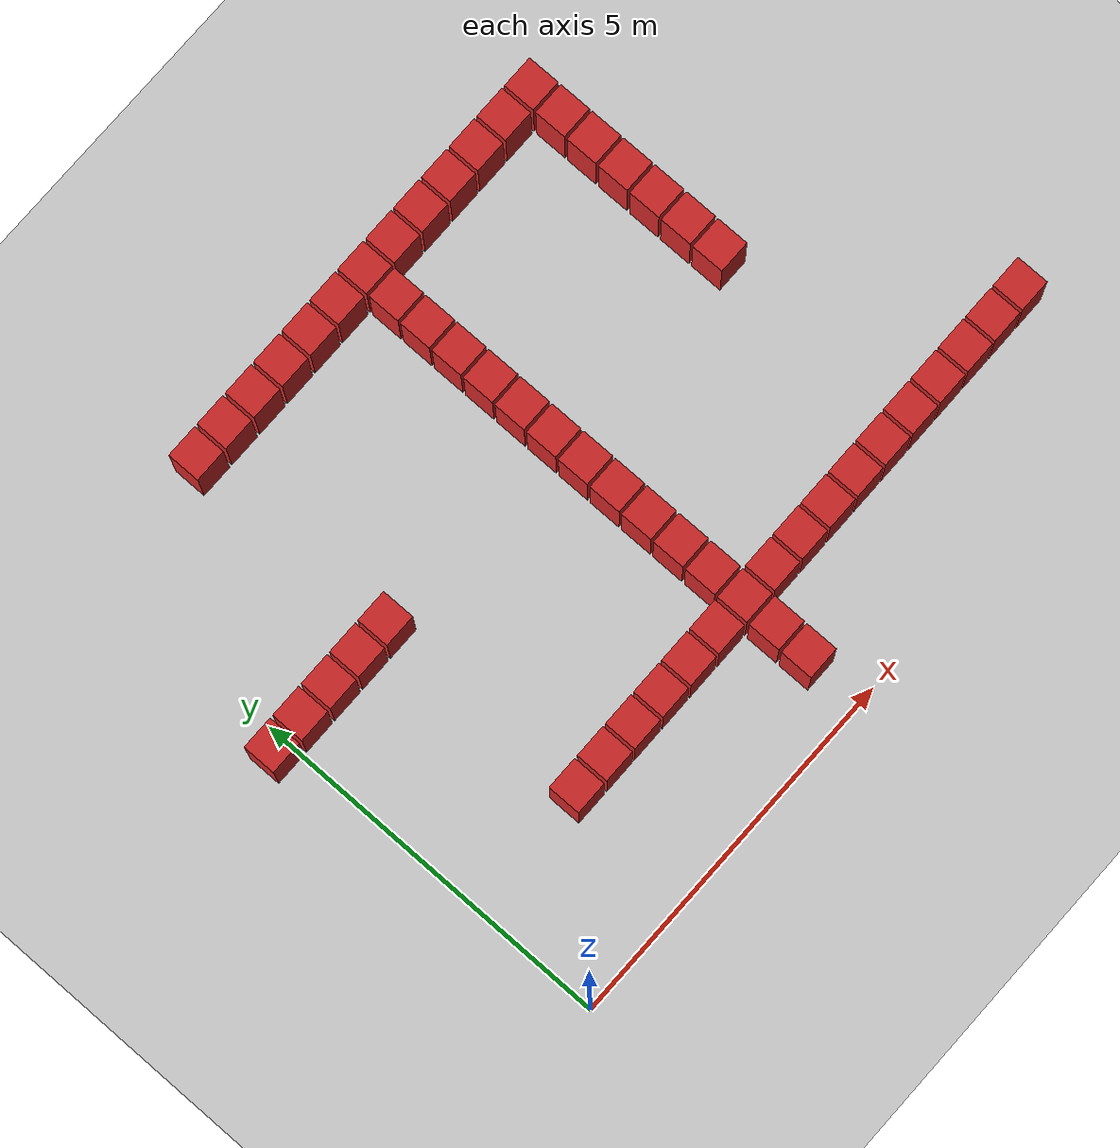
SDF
<sdf version="1.6">
 <world name="default">
  <model name="ground_plane">
   <static>1</static>
   <link name="link">
    <collision name="collision">
     <geometry><plane><normal>0 0 1</normal><size>100 100</size></plane></geometry>
     <surface><friction><ode><mu>100</mu><mu2>50</mu2></ode></friction></surface>
    </collision>
    <visual name="visual">
     <cast_shadows>0</cast_shadows>
     <geometry><plane><normal>0 0 1</normal><size>100 100</size></plane></geometry>
     <material>
      <script><uri>file://media/materials/scripts/gazebo.material</uri><name>Gazebo/Grey</name></script>
     </material>
    </visual>
   </link>
  </model>
  <model name="box_obstacle110">
   <static>0</static>
   <link name="box_obstacle110">
    <pose>0 0 0.1 0 -0 0</pose>
    <inertial>
     <mass>100</mass>
     <inertia>
      <ixx>0.166667</ixx>
      <ixy>0</ixy>
      <ixz>0</ixz>
      <iyy>0.166667</iyy>
      <iyz>0</iyz>
      <izz>0.166667</izz>
     </inertia>
    </inertial>
    <collision name="collision"><geometry><box><size>0.45 0.45 1</size></box></geometry></collision>
    <visual name="visual">
     <geometry><box><size>0.45 0.45 1</size></box></geometry>
     <material>
      <script><name>Gazebo/Red</name><uri>file://media/materials/scripts/gazebo.material</uri></script>
     </material>
    </visual>
   </link>
   <pose>-0.200508 4.69876 0.4 0 5e-06 0.002247</pose>
  </model>
  <model name="box_obstacle112">
   <static>0</static>
   <link name="box_obstacle112">
    <pose>0 0 0.1 0 -0 0</pose>
    <inertial>
     <mass>100</mass>
     <inertia>
      <ixx>0.166667</ixx>
      <ixy>0</ixy>
      <ixz>0</ixz>
      <iyy>0.166667</iyy>
      <iyz>0</iyz>
      <izz>0.166667</izz>
     </inertia>
    </inertial>
    <collision name="collision"><geometry><box><size>0.45 0.45 1</size></box></geometry></collision>
    <visual name="visual">
     <geometry><box><size>0.45 0.45 1</size></box></geometry>
     <material>
      <script><name>Gazebo/Red</name><uri>file://media/materials/scripts/gazebo.material</uri></script>
     </material>
    </visual>
   </link>
   <pose>0.289492 4.69876 0.4 0 5e-06 0.002247</pose>
  </model>
  <model name="box_obstacle114">
   <static>0</static>
   <link name="box_obstacle114">
    <pose>0 0 0.1 0 -0 0</pose>
    <inertial>
     <mass>100</mass>
     <inertia>
      <ixx>0.166667</ixx>
      <ixy>0</ixy>
      <ixz>0</ixz>
      <iyy>0.166667</iyy>
      <iyz>0</iyz>
      <izz>0.166667</izz>
     </inertia>
    </inertial>
    <collision name="collision"><geometry><box><size>0.45 0.45 1</size></box></geometry></collision>
    <visual name="visual">
     <geometry><box><size>0.45 0.45 1</size></box></geometry>
     <material>
      <script><name>Gazebo/Red</name><uri>file://media/materials/scripts/gazebo.material</uri></script>
     </material>
    </visual>
   </link>
   <pose>0.779492 4.69876 0.4 0 5e-06 0.002247</pose>
  </model>
  <model name="box_obstacle116">
   <static>0</static>
   <link name="box_obstacle116">
    <pose>0 0 0.1 0 -0 0</pose>
    <inertial>
     <mass>100</mass>
     <inertia>
      <ixx>0.166667</ixx>
      <ixy>0</ixy>
      <ixz>0</ixz>
      <iyy>0.166667</iyy>
      <iyz>0</iyz>
      <izz>0.166667</izz>
     </inertia>
    </inertial>
    <collision name="collision"><geometry><box><size>0.45 0.45 1</size></box></geometry></collision>
    <visual name="visual">
     <geometry><box><size>0.45 0.45 1</size></box></geometry>
     <material>
      <script><name>Gazebo/Red</name><uri>file://media/materials/scripts/gazebo.material</uri></script>
     </material>
    </visual>
   </link>
   <pose>1.26949 4.69876 0.4 0 5e-06 0.002247</pose>
  </model>
  <model name="box_obstacle130">
   <static>0</static>
   <link name="box_obstacle130">
    <pose>0 0 0.1 0 -0 0</pose>
    <inertial>
     <mass>100</mass>
     <inertia>
      <ixx>0.166667</ixx>
      <ixy>0</ixy>
      <ixz>0</ixz>
      <iyy>0.166667</iyy>
      <iyz>0</iyz>
      <izz>0.166667</izz>
     </inertia>
    </inertial>
    <collision name="collision"><geometry><box><size>0.45 0.45 1</size></box></geometry></collision>
    <visual name="visual">
     <geometry><box><size>0.45 0.45 1</size></box></geometry>
     <material>
      <script><name>Gazebo/Red</name><uri>file://media/materials/scripts/gazebo.material</uri></script>
     </material>
    </visual>
   </link>
   <pose>1.75949 1.75876 0.4 0 5e-06 0.002247</pose>
  </model>
  <model name="box_obstacle131">
   <static>0</static>
   <link name="box_obstacle131">
    <pose>0 0 0.1 0 -0 0</pose>
    <inertial>
     <mass>100</mass>
     <inertia>
      <ixx>0.166667</ixx>
      <ixy>0</ixy>
      <ixz>0</ixz>
      <iyy>0.166667</iyy>
      <iyz>0</iyz>
      <izz>0.166667</izz>
     </inertia>
    </inertial>
    <collision name="collision"><geometry><box><size>0.45 0.45 1</size></box></geometry></collision>
    <visual name="visual">
     <geometry><box><size>0.45 0.45 1</size></box></geometry>
     <material>
      <script><name>Gazebo/Red</name><uri>file://media/materials/scripts/gazebo.material</uri></script>
     </material>
    </visual>
   </link>
   <pose>1.75949 4.69876 0.4 0 5e-06 0.002247</pose>
  </model>
  <model name="box_obstacle132">
   <static>0</static>
   <link name="box_obstacle132">
    <pose>0 0 0.1 0 -0 0</pose>
    <inertial>
     <mass>100</mass>
     <inertia>
      <ixx>0.166667</ixx>
      <ixy>0</ixy>
      <ixz>0</ixz>
      <iyy>0.166667</iyy>
      <iyz>0</iyz>
      <izz>0.166667</izz>
     </inertia>
    </inertial>
    <collision name="collision"><geometry><box><size>0.45 0.45 1</size></box></geometry></collision>
    <visual name="visual">
     <geometry><box><size>0.45 0.45 1</size></box></geometry>
     <material>
      <script><name>Gazebo/Red</name><uri>file://media/materials/scripts/gazebo.material</uri></script>
     </material>
    </visual>
   </link>
   <pose>1.75949 7.63876 0.4 0 5e-06 0.002247</pose>
  </model>
  <model name="box_obstacle134">
   <static>0</static>
   <link name="box_obstacle134">
    <pose>0 0 0.1 0 -0 0</pose>
    <inertial>
     <mass>100</mass>
     <inertia>
      <ixx>0.166667</ixx>
      <ixy>0</ixy>
      <ixz>0</ixz>
      <iyy>0.166667</iyy>
      <iyz>0</iyz>
      <izz>0.166667</izz>
     </inertia>
    </inertial>
    <collision name="collision"><geometry><box><size>0.45 0.45 1</size></box></geometry></collision>
    <visual name="visual">
     <geometry><box><size>0.45 0.45 1</size></box></geometry>
     <material>
      <script><name>Gazebo/Red</name><uri>file://media/materials/scripts/gazebo.material</uri></script>
     </material>
    </visual>
   </link>
   <pose>2.24949 1.75876 0.4 0 5e-06 0.002247</pose>
  </model>
  <model name="box_obstacle135">
   <static>0</static>
   <link name="box_obstacle135">
    <pose>0 0 0.1 0 -0 0</pose>
    <inertial>
     <mass>100</mass>
     <inertia>
      <ixx>0.166667</ixx>
      <ixy>0</ixy>
      <ixz>0</ixz>
      <iyy>0.166667</iyy>
      <iyz>0</iyz>
      <izz>0.166667</izz>
     </inertia>
    </inertial>
    <collision name="collision"><geometry><box><size>0.45 0.45 1</size></box></geometry></collision>
    <visual name="visual">
     <geometry><box><size>0.45 0.45 1</size></box></geometry>
     <material>
      <script><name>Gazebo/Red</name><uri>file://media/materials/scripts/gazebo.material</uri></script>
     </material>
    </visual>
   </link>
   <pose>2.24949 7.63876 0.4 0 5e-06 0.002247</pose>
  </model>
  <model name="box_obstacle137">
   <static>0</static>
   <link name="box_obstacle137">
    <pose>0 0 0.1 0 -0 0</pose>
    <inertial>
     <mass>100</mass>
     <inertia>
      <ixx>0.166667</ixx>
      <ixy>0</ixy>
      <ixz>0</ixz>
      <iyy>0.166667</iyy>
      <iyz>0</iyz>
      <izz>0.166667</izz>
     </inertia>
    </inertial>
    <collision name="collision"><geometry><box><size>0.45 0.45 1</size></box></geometry></collision>
    <visual name="visual">
     <geometry><box><size>0.45 0.45 1</size></box></geometry>
     <material>
      <script><name>Gazebo/Red</name><uri>file://media/materials/scripts/gazebo.material</uri></script>
     </material>
    </visual>
   </link>
   <pose>2.73949 1.75876 0.4 0 5e-06 0.002247</pose>
  </model>
  <model name="box_obstacle138">
   <static>0</static>
   <link name="box_obstacle138">
    <pose>0 0 0.1 0 -0 0</pose>
    <inertial>
     <mass>100</mass>
     <inertia>
      <ixx>0.166667</ixx>
      <ixy>0</ixy>
      <ixz>0</ixz>
      <iyy>0.166667</iyy>
      <iyz>0</iyz>
      <izz>0.166667</izz>
     </inertia>
    </inertial>
    <collision name="collision"><geometry><box><size>0.45 0.45 1</size></box></geometry></collision>
    <visual name="visual">
     <geometry><box><size>0.45 0.45 1</size></box></geometry>
     <material>
      <script><name>Gazebo/Red</name><uri>file://media/materials/scripts/gazebo.material</uri></script>
     </material>
    </visual>
   </link>
   <pose>2.73949 7.63876 0.4 0 5e-06 0.002247</pose>
  </model>
  <model name="box_obstacle140">
   <static>0</static>
   <link name="box_obstacle140">
    <pose>0 0 0.1 0 -0 0</pose>
    <inertial>
     <mass>100</mass>
     <inertia>
      <ixx>0.166667</ixx>
      <ixy>0</ixy>
      <ixz>0</ixz>
      <iyy>0.166667</iyy>
      <iyz>0</iyz>
      <izz>0.166667</izz>
     </inertia>
    </inertial>
    <collision name="collision"><geometry><box><size>0.45 0.45 1</size></box></geometry></collision>
    <visual name="visual">
     <geometry><box><size>0.45 0.45 1</size></box></geometry>
     <material>
      <script><name>Gazebo/Red</name><uri>file://media/materials/scripts/gazebo.material</uri></script>
     </material>
    </visual>
   </link>
   <pose>3.22949 1.75876 0.4 0 5e-06 0.002247</pose>
  </model>
  <model name="box_obstacle141">
   <static>0</static>
   <link name="box_obstacle141">
    <pose>0 0 0.1 0 -0 0</pose>
    <inertial>
     <mass>100</mass>
     <inertia>
      <ixx>0.166667</ixx>
      <ixy>0</ixy>
      <ixz>0</ixz>
      <iyy>0.166667</iyy>
      <iyz>0</iyz>
      <izz>0.166667</izz>
     </inertia>
    </inertial>
    <collision name="collision"><geometry><box><size>0.45 0.45 1</size></box></geometry></collision>
    <visual name="visual">
     <geometry><box><size>0.45 0.45 1</size></box></geometry>
     <material>
      <script><name>Gazebo/Red</name><uri>file://media/materials/scripts/gazebo.material</uri></script>
     </material>
    </visual>
   </link>
   <pose>3.22949 7.63876 0.4 0 5e-06 0.002247</pose>
  </model>
  <model name="box_obstacle143">
   <static>0</static>
   <link name="box_obstacle143">
    <pose>0 0 0.1 0 -0 0</pose>
    <inertial>
     <mass>100</mass>
     <inertia>
      <ixx>0.166667</ixx>
      <ixy>0</ixy>
      <ixz>0</ixz>
      <iyy>0.166667</iyy>
      <iyz>0</iyz>
      <izz>0.166667</izz>
     </inertia>
    </inertial>
    <collision name="collision"><geometry><box><size>0.45 0.45 1</size></box></geometry></collision>
    <visual name="visual">
     <geometry><box><size>0.45 0.45 1</size></box></geometry>
     <material>
      <script><name>Gazebo/Red</name><uri>file://media/materials/scripts/gazebo.material</uri></script>
     </material>
    </visual>
   </link>
   <pose>3.71949 1.75876 0.4 0 5e-06 0.002247</pose>
  </model>
  <model name="box_obstacle144">
   <static>0</static>
   <link name="box_obstacle144">
    <pose>0 0 0.1 0 -0 0</pose>
    <inertial>
     <mass>100</mass>
     <inertia>
      <ixx>0.166667</ixx>
      <ixy>0</ixy>
      <ixz>0</ixz>
      <iyy>0.166667</iyy>
      <iyz>0</iyz>
      <izz>0.166667</izz>
     </inertia>
    </inertial>
    <collision name="collision"><geometry><box><size>0.45 0.45 1</size></box></geometry></collision>
    <visual name="visual">
     <geometry><box><size>0.45 0.45 1</size></box></geometry>
     <material>
      <script><name>Gazebo/Red</name><uri>file://media/materials/scripts/gazebo.material</uri></script>
     </material>
    </visual>
   </link>
   <pose>3.71949 7.63876 0.4 0 5e-06 0.002247</pose>
  </model>
  <model name="box_obstacle146">
   <static>0</static>
   <link name="box_obstacle146">
    <pose>0 0 0.1 0 -0 0</pose>
    <inertial>
     <mass>100</mass>
     <inertia>
      <ixx>0.166667</ixx>
      <ixy>0</ixy>
      <ixz>0</ixz>
      <iyy>0.166667</iyy>
      <iyz>0</iyz>
      <izz>0.166667</izz>
     </inertia>
    </inertial>
    <collision name="collision"><geometry><box><size>0.45 0.45 1</size></box></geometry></collision>
    <visual name="visual">
     <geometry><box><size>0.45 0.45 1</size></box></geometry>
     <material>
      <script><name>Gazebo/Red</name><uri>file://media/materials/scripts/gazebo.material</uri></script>
     </material>
    </visual>
   </link>
   <pose>4.20949 1.75876 0.4 0 5e-06 0.002247</pose>
  </model>
  <model name="box_obstacle147">
   <static>0</static>
   <link name="box_obstacle147">
    <pose>0 0 0.1 0 -0 0</pose>
    <inertial>
     <mass>100</mass>
     <inertia>
      <ixx>0.166667</ixx>
      <ixy>0</ixy>
      <ixz>0</ixz>
      <iyy>0.166667</iyy>
      <iyz>0</iyz>
      <izz>0.166667</izz>
     </inertia>
    </inertial>
    <collision name="collision"><geometry><box><size>0.45 0.45 1</size></box></geometry></collision>
    <visual name="visual">
     <geometry><box><size>0.45 0.45 1</size></box></geometry>
     <material>
      <script><name>Gazebo/Red</name><uri>file://media/materials/scripts/gazebo.material</uri></script>
     </material>
    </visual>
   </link>
   <pose>4.20949 7.63876 0.4 0 5e-06 0.002247</pose>
  </model>
  <model name="box_obstacle159">
   <static>0</static>
   <link name="box_obstacle159">
    <pose>0 0 0.1 0 -0 0</pose>
    <inertial>
     <mass>100</mass>
     <inertia>
      <ixx>0.166667</ixx>
      <ixy>0</ixy>
      <ixz>0</ixz>
      <iyy>0.166667</iyy>
      <iyz>0</iyz>
      <izz>0.166667</izz>
     </inertia>
    </inertial>
    <collision name="collision"><geometry><box><size>0.45 0.45 1</size></box></geometry></collision>
    <visual name="visual">
     <geometry><box><size>0.45 0.45 1</size></box></geometry>
     <material>
      <script><name>Gazebo/Red</name><uri>file://media/materials/scripts/gazebo.material</uri></script>
     </material>
    </visual>
   </link>
   <pose>4.69949 0.778758 0.4 0 5e-06 0.002247</pose>
  </model>
  <model name="box_obstacle160">
   <static>0</static>
   <link name="box_obstacle160">
    <pose>0 0 0.1 0 -0 0</pose>
    <inertial>
     <mass>100</mass>
     <inertia>
      <ixx>0.166667</ixx>
      <ixy>0</ixy>
      <ixz>0</ixz>
      <iyy>0.166667</iyy>
      <iyz>0</iyz>
      <izz>0.166667</izz>
     </inertia>
    </inertial>
    <collision name="collision"><geometry><box><size>0.45 0.45 1</size></box></geometry></collision>
    <visual name="visual">
     <geometry><box><size>0.45 0.45 1</size></box></geometry>
     <material>
      <script><name>Gazebo/Red</name><uri>file://media/materials/scripts/gazebo.material</uri></script>
     </material>
    </visual>
   </link>
   <pose>4.69949 1.26876 0.4 0 5e-06 0.002247</pose>
  </model>
  <model name="box_obstacle161">
   <static>0</static>
   <link name="box_obstacle161">
    <pose>0 0 0.1 0 -0 0</pose>
    <inertial>
     <mass>100</mass>
     <inertia>
      <ixx>0.166667</ixx>
      <ixy>0</ixy>
      <ixz>0</ixz>
      <iyy>0.166667</iyy>
      <iyz>0</iyz>
      <izz>0.166667</izz>
     </inertia>
    </inertial>
    <collision name="collision"><geometry><box><size>0.45 0.45 1</size></box></geometry></collision>
    <visual name="visual">
     <geometry><box><size>0.45 0.45 1</size></box></geometry>
     <material>
      <script><name>Gazebo/Red</name><uri>file://media/materials/scripts/gazebo.material</uri></script>
     </material>
    </visual>
   </link>
   <pose>4.69949 1.75876 0.4 0 5e-06 0.002247</pose>
  </model>
  <model name="box_obstacle162">
   <static>0</static>
   <link name="box_obstacle162">
    <pose>0 0 0.1 0 -0 0</pose>
    <inertial>
     <mass>100</mass>
     <inertia>
      <ixx>0.166667</ixx>
      <ixy>0</ixy>
      <ixz>0</ixz>
      <iyy>0.166667</iyy>
      <iyz>0</iyz>
      <izz>0.166667</izz>
     </inertia>
    </inertial>
    <collision name="collision"><geometry><box><size>0.45 0.45 1</size></box></geometry></collision>
    <visual name="visual">
     <geometry><box><size>0.45 0.45 1</size></box></geometry>
     <material>
      <script><name>Gazebo/Red</name><uri>file://media/materials/scripts/gazebo.material</uri></script>
     </material>
    </visual>
   </link>
   <pose>4.69949 2.24876 0.4 0 5e-06 0.002247</pose>
  </model>
  <model name="box_obstacle163">
   <static>0</static>
   <link name="box_obstacle163">
    <pose>0 0 0.1 0 -0 0</pose>
    <inertial>
     <mass>100</mass>
     <inertia>
      <ixx>0.166667</ixx>
      <ixy>0</ixy>
      <ixz>0</ixz>
      <iyy>0.166667</iyy>
      <iyz>0</iyz>
      <izz>0.166667</izz>
     </inertia>
    </inertial>
    <collision name="collision"><geometry><box><size>0.45 0.45 1</size></box></geometry></collision>
    <visual name="visual">
     <geometry><box><size>0.45 0.45 1</size></box></geometry>
     <material>
      <script><name>Gazebo/Red</name><uri>file://media/materials/scripts/gazebo.material</uri></script>
     </material>
    </visual>
   </link>
   <pose>4.69949 2.73876 0.4 0 5e-06 0.002247</pose>
  </model>
  <model name="box_obstacle164">
   <static>0</static>
   <link name="box_obstacle164">
    <pose>0 0 0.1 0 -0 0</pose>
    <inertial>
     <mass>100</mass>
     <inertia>
      <ixx>0.166667</ixx>
      <ixy>0</ixy>
      <ixz>0</ixz>
      <iyy>0.166667</iyy>
      <iyz>0</iyz>
      <izz>0.166667</izz>
     </inertia>
    </inertial>
    <collision name="collision"><geometry><box><size>0.45 0.45 1</size></box></geometry></collision>
    <visual name="visual">
     <geometry><box><size>0.45 0.45 1</size></box></geometry>
     <material>
      <script><name>Gazebo/Red</name><uri>file://media/materials/scripts/gazebo.material</uri></script>
     </material>
    </visual>
   </link>
   <pose>4.69949 3.22876 0.4 0 5e-06 0.002247</pose>
  </model>
  <model name="box_obstacle165">
   <static>0</static>
   <link name="box_obstacle165">
    <pose>0 0 0.1 0 -0 0</pose>
    <inertial>
     <mass>100</mass>
     <inertia>
      <ixx>0.166667</ixx>
      <ixy>0</ixy>
      <ixz>0</ixz>
      <iyy>0.166667</iyy>
      <iyz>0</iyz>
      <izz>0.166667</izz>
     </inertia>
    </inertial>
    <collision name="collision"><geometry><box><size>0.45 0.45 1</size></box></geometry></collision>
    <visual name="visual">
     <geometry><box><size>0.45 0.45 1</size></box></geometry>
     <material>
      <script><name>Gazebo/Red</name><uri>file://media/materials/scripts/gazebo.material</uri></script>
     </material>
    </visual>
   </link>
   <pose>4.69949 3.71876 0.4 0 5e-06 0.002247</pose>
  </model>
  <model name="box_obstacle166">
   <static>0</static>
   <link name="box_obstacle166">
    <pose>0 0 0.1 0 -0 0</pose>
    <inertial>
     <mass>100</mass>
     <inertia>
      <ixx>0.166667</ixx>
      <ixy>0</ixy>
      <ixz>0</ixz>
      <iyy>0.166667</iyy>
      <iyz>0</iyz>
      <izz>0.166667</izz>
     </inertia>
    </inertial>
    <collision name="collision"><geometry><box><size>0.45 0.45 1</size></box></geometry></collision>
    <visual name="visual">
     <geometry><box><size>0.45 0.45 1</size></box></geometry>
     <material>
      <script><name>Gazebo/Red</name><uri>file://media/materials/scripts/gazebo.material</uri></script>
     </material>
    </visual>
   </link>
   <pose>4.69949 4.20876 0.4 0 5e-06 0.002247</pose>
  </model>
  <model name="box_obstacle167">
   <static>0</static>
   <link name="box_obstacle167">
    <pose>0 0 0.1 0 -0 0</pose>
    <inertial>
     <mass>100</mass>
     <inertia>
      <ixx>0.166667</ixx>
      <ixy>0</ixy>
      <ixz>0</ixz>
      <iyy>0.166667</iyy>
      <iyz>0</iyz>
      <izz>0.166667</izz>
     </inertia>
    </inertial>
    <collision name="collision"><geometry><box><size>0.45 0.45 1</size></box></geometry></collision>
    <visual name="visual">
     <geometry><box><size>0.45 0.45 1</size></box></geometry>
     <material>
      <script><name>Gazebo/Red</name><uri>file://media/materials/scripts/gazebo.material</uri></script>
     </material>
    </visual>
   </link>
   <pose>4.69949 4.69876 0.4 0 5e-06 0.002247</pose>
  </model>
  <model name="box_obstacle168">
   <static>0</static>
   <link name="box_obstacle168">
    <pose>0 0 0.1 0 -0 0</pose>
    <inertial>
     <mass>100</mass>
     <inertia>
      <ixx>0.166667</ixx>
      <ixy>0</ixy>
      <ixz>0</ixz>
      <iyy>0.166667</iyy>
      <iyz>0</iyz>
      <izz>0.166667</izz>
     </inertia>
    </inertial>
    <collision name="collision"><geometry><box><size>0.45 0.45 1</size></box></geometry></collision>
    <visual name="visual">
     <geometry><box><size>0.45 0.45 1</size></box></geometry>
     <material>
      <script><name>Gazebo/Red</name><uri>file://media/materials/scripts/gazebo.material</uri></script>
     </material>
    </visual>
   </link>
   <pose>4.69949 5.18876 0.4 0 5e-06 0.002247</pose>
  </model>
  <model name="box_obstacle169">
   <static>0</static>
   <link name="box_obstacle169">
    <pose>0 0 0.1 0 -0 0</pose>
    <inertial>
     <mass>100</mass>
     <inertia>
      <ixx>0.166667</ixx>
      <ixy>0</ixy>
      <ixz>0</ixz>
      <iyy>0.166667</iyy>
      <iyz>0</iyz>
      <izz>0.166667</izz>
     </inertia>
    </inertial>
    <collision name="collision"><geometry><box><size>0.45 0.45 1</size></box></geometry></collision>
    <visual name="visual">
     <geometry><box><size>0.45 0.45 1</size></box></geometry>
     <material>
      <script><name>Gazebo/Red</name><uri>file://media/materials/scripts/gazebo.material</uri></script>
     </material>
    </visual>
   </link>
   <pose>4.69949 5.67876 0.4 0 5e-06 0.002247</pose>
  </model>
  <model name="box_obstacle170">
   <static>0</static>
   <link name="box_obstacle170">
    <pose>0 0 0.1 0 -0 0</pose>
    <inertial>
     <mass>100</mass>
     <inertia>
      <ixx>0.166667</ixx>
      <ixy>0</ixy>
      <ixz>0</ixz>
      <iyy>0.166667</iyy>
      <iyz>0</iyz>
      <izz>0.166667</izz>
     </inertia>
    </inertial>
    <collision name="collision"><geometry><box><size>0.45 0.45 1</size></box></geometry></collision>
    <visual name="visual">
     <geometry><box><size>0.45 0.45 1</size></box></geometry>
     <material>
      <script><name>Gazebo/Red</name><uri>file://media/materials/scripts/gazebo.material</uri></script>
     </material>
    </visual>
   </link>
   <pose>4.69949 6.16876 0.4 0 5e-06 0.002247</pose>
  </model>
  <model name="box_obstacle171">
   <static>0</static>
   <link name="box_obstacle171">
    <pose>0 0 0.1 0 -0 0</pose>
    <inertial>
     <mass>100</mass>
     <inertia>
      <ixx>0.166667</ixx>
      <ixy>0</ixy>
      <ixz>0</ixz>
      <iyy>0.166667</iyy>
      <iyz>0</iyz>
      <izz>0.166667</izz>
     </inertia>
    </inertial>
    <collision name="collision"><geometry><box><size>0.45 0.45 1</size></box></geometry></collision>
    <visual name="visual">
     <geometry><box><size>0.45 0.45 1</size></box></geometry>
     <material>
      <script><name>Gazebo/Red</name><uri>file://media/materials/scripts/gazebo.material</uri></script>
     </material>
    </visual>
   </link>
   <pose>4.69949 6.65876 0.4 0 5e-06 0.002247</pose>
  </model>
  <model name="box_obstacle172">
   <static>0</static>
   <link name="box_obstacle172">
    <pose>0 0 0.1 0 -0 0</pose>
    <inertial>
     <mass>100</mass>
     <inertia>
      <ixx>0.166667</ixx>
      <ixy>0</ixy>
      <ixz>0</ixz>
      <iyy>0.166667</iyy>
      <iyz>0</iyz>
      <izz>0.166667</izz>
     </inertia>
    </inertial>
    <collision name="collision"><geometry><box><size>0.45 0.45 1</size></box></geometry></collision>
    <visual name="visual">
     <geometry><box><size>0.45 0.45 1</size></box></geometry>
     <material>
      <script><name>Gazebo/Red</name><uri>file://media/materials/scripts/gazebo.material</uri></script>
     </material>
    </visual>
   </link>
   <pose>4.69949 7.14876 0.4 0 5e-06 0.002247</pose>
  </model>
  <model name="box_obstacle173">
   <static>0</static>
   <link name="box_obstacle173">
    <pose>0 0 0.1 0 -0 0</pose>
    <inertial>
     <mass>100</mass>
     <inertia>
      <ixx>0.166667</ixx>
      <ixy>0</ixy>
      <ixz>0</ixz>
      <iyy>0.166667</iyy>
      <iyz>0</iyz>
      <izz>0.166667</izz>
     </inertia>
    </inertial>
    <collision name="collision"><geometry><box><size>0.45 0.45 1</size></box></geometry></collision>
    <visual name="visual">
     <geometry><box><size>0.45 0.45 1</size></box></geometry>
     <material>
      <script><name>Gazebo/Red</name><uri>file://media/materials/scripts/gazebo.material</uri></script>
     </material>
    </visual>
   </link>
   <pose>4.69949 7.63876 0.4 0 5e-06 0.002247</pose>
  </model>
  <model name="box_obstacle175">
   <static>0</static>
   <link name="box_obstacle175">
    <pose>0 0 0.1 0 -0 0</pose>
    <inertial>
     <mass>100</mass>
     <inertia>
      <ixx>0.166667</ixx>
      <ixy>0</ixy>
      <ixz>0</ixz>
      <iyy>0.166667</iyy>
      <iyz>0</iyz>
      <izz>0.166667</izz>
     </inertia>
    </inertial>
    <collision name="collision"><geometry><box><size>0.45 0.45 1</size></box></geometry></collision>
    <visual name="visual">
     <geometry><box><size>0.45 0.45 1</size></box></geometry>
     <material>
      <script><name>Gazebo/Red</name><uri>file://media/materials/scripts/gazebo.material</uri></script>
     </material>
    </visual>
   </link>
   <pose>5.18949 1.75876 0.4 0 5e-06 0.002247</pose>
  </model>
  <model name="box_obstacle176">
   <static>0</static>
   <link name="box_obstacle176">
    <pose>0 0 0.1 0 -0 0</pose>
    <inertial>
     <mass>100</mass>
     <inertia>
      <ixx>0.166667</ixx>
      <ixy>0</ixy>
      <ixz>0</ixz>
      <iyy>0.166667</iyy>
      <iyz>0</iyz>
      <izz>0.166667</izz>
     </inertia>
    </inertial>
    <collision name="collision"><geometry><box><size>0.45 0.45 1</size></box></geometry></collision>
    <visual name="visual">
     <geometry><box><size>0.45 0.45 1</size></box></geometry>
     <material>
      <script><name>Gazebo/Red</name><uri>file://media/materials/scripts/gazebo.material</uri></script>
     </material>
    </visual>
   </link>
   <pose>5.18949 7.63876 0.4 0 5e-06 0.002247</pose>
  </model>
  <model name="box_obstacle178">
   <static>0</static>
   <link name="box_obstacle178">
    <pose>0 0 0.1 0 -0 0</pose>
    <inertial>
     <mass>100</mass>
     <inertia>
      <ixx>0.166667</ixx>
      <ixy>0</ixy>
      <ixz>0</ixz>
      <iyy>0.166667</iyy>
      <iyz>0</iyz>
      <izz>0.166667</izz>
     </inertia>
    </inertial>
    <collision name="collision"><geometry><box><size>0.45 0.45 1</size></box></geometry></collision>
    <visual name="visual">
     <geometry><box><size>0.45 0.45 1</size></box></geometry>
     <material>
      <script><name>Gazebo/Red</name><uri>file://media/materials/scripts/gazebo.material</uri></script>
     </material>
    </visual>
   </link>
   <pose>5.67949 1.75876 0.4 0 5e-06 0.002247</pose>
  </model>
  <model name="box_obstacle179">
   <static>0</static>
   <link name="box_obstacle179">
    <pose>0 0 0.1 0 -0 0</pose>
    <inertial>
     <mass>100</mass>
     <inertia>
      <ixx>0.166667</ixx>
      <ixy>0</ixy>
      <ixz>0</ixz>
      <iyy>0.166667</iyy>
      <iyz>0</iyz>
      <izz>0.166667</izz>
     </inertia>
    </inertial>
    <collision name="collision"><geometry><box><size>0.45 0.45 1</size></box></geometry></collision>
    <visual name="visual">
     <geometry><box><size>0.45 0.45 1</size></box></geometry>
     <material>
      <script><name>Gazebo/Red</name><uri>file://media/materials/scripts/gazebo.material</uri></script>
     </material>
    </visual>
   </link>
   <pose>5.67949 7.63876 0.4 0 5e-06 0.002247</pose>
  </model>
  <model name="box_obstacle181">
   <static>0</static>
   <link name="box_obstacle181">
    <pose>0 0 0.1 0 -0 0</pose>
    <inertial>
     <mass>100</mass>
     <inertia>
      <ixx>0.166667</ixx>
      <ixy>0</ixy>
      <ixz>0</ixz>
      <iyy>0.166667</iyy>
      <iyz>0</iyz>
      <izz>0.166667</izz>
     </inertia>
    </inertial>
    <collision name="collision"><geometry><box><size>0.45 0.45 1</size></box></geometry></collision>
    <visual name="visual">
     <geometry><box><size>0.45 0.45 1</size></box></geometry>
     <material>
      <script><name>Gazebo/Red</name><uri>file://media/materials/scripts/gazebo.material</uri></script>
     </material>
    </visual>
   </link>
   <pose>6.16949 1.75876 0.4 0 5e-06 0.002247</pose>
  </model>
  <model name="box_obstacle182">
   <static>0</static>
   <link name="box_obstacle182">
    <pose>0 0 0.1 0 -0 0</pose>
    <inertial>
     <mass>100</mass>
     <inertia>
      <ixx>0.166667</ixx>
      <ixy>0</ixy>
      <ixz>0</ixz>
      <iyy>0.166667</iyy>
      <iyz>0</iyz>
      <izz>0.166667</izz>
     </inertia>
    </inertial>
    <collision name="collision"><geometry><box><size>0.45 0.45 1</size></box></geometry></collision>
    <visual name="visual">
     <geometry><box><size>0.45 0.45 1</size></box></geometry>
     <material>
      <script><name>Gazebo/Red</name><uri>file://media/materials/scripts/gazebo.material</uri></script>
     </material>
    </visual>
   </link>
   <pose>6.16949 7.63876 0.4 0 5e-06 0.002247</pose>
  </model>
  <model name="box_obstacle184">
   <static>0</static>
   <link name="box_obstacle184">
    <pose>0 0 0.1 0 -0 0</pose>
    <inertial>
     <mass>100</mass>
     <inertia>
      <ixx>0.166667</ixx>
      <ixy>0</ixy>
      <ixz>0</ixz>
      <iyy>0.166667</iyy>
      <iyz>0</iyz>
      <izz>0.166667</izz>
     </inertia>
    </inertial>
    <collision name="collision"><geometry><box><size>0.45 0.45 1</size></box></geometry></collision>
    <visual name="visual">
     <geometry><box><size>0.45 0.45 1</size></box></geometry>
     <material>
      <script><name>Gazebo/Red</name><uri>file://media/materials/scripts/gazebo.material</uri></script>
     </material>
    </visual>
   </link>
   <pose>6.65949 1.75876 0.4 0 5e-06 0.002247</pose>
  </model>
  <model name="box_obstacle185">
   <static>0</static>
   <link name="box_obstacle185">
    <pose>0 0 0.1 0 -0 0</pose>
    <inertial>
     <mass>100</mass>
     <inertia>
      <ixx>0.166667</ixx>
      <ixy>0</ixy>
      <ixz>0</ixz>
      <iyy>0.166667</iyy>
      <iyz>0</iyz>
      <izz>0.166667</izz>
     </inertia>
    </inertial>
    <collision name="collision"><geometry><box><size>0.45 0.45 1</size></box></geometry></collision>
    <visual name="visual">
     <geometry><box><size>0.45 0.45 1</size></box></geometry>
     <material>
      <script><name>Gazebo/Red</name><uri>file://media/materials/scripts/gazebo.material</uri></script>
     </material>
    </visual>
   </link>
   <pose>6.65949 7.63876 0.4 0 5e-06 0.002247</pose>
  </model>
  <model name="box_obstacle187">
   <static>0</static>
   <link name="box_obstacle187">
    <pose>0 0 0.1 0 -0 0</pose>
    <inertial>
     <mass>100</mass>
     <inertia>
      <ixx>0.166667</ixx>
      <ixy>0</ixy>
      <ixz>0</ixz>
      <iyy>0.166667</iyy>
      <iyz>0</iyz>
      <izz>0.166667</izz>
     </inertia>
    </inertial>
    <collision name="collision"><geometry><box><size>0.45 0.45 1</size></box></geometry></collision>
    <visual name="visual">
     <geometry><box><size>0.45 0.45 1</size></box></geometry>
     <material>
      <script><name>Gazebo/Red</name><uri>file://media/materials/scripts/gazebo.material</uri></script>
     </material>
    </visual>
   </link>
   <pose>7.14949 1.75876 0.4 0 5e-06 0.002247</pose>
  </model>
  <model name="box_obstacle188">
   <static>0</static>
   <link name="box_obstacle188">
    <pose>0 0 0.1 0 -0 0</pose>
    <inertial>
     <mass>100</mass>
     <inertia>
      <ixx>0.166667</ixx>
      <ixy>0</ixy>
      <ixz>0</ixz>
      <iyy>0.166667</iyy>
      <iyz>0</iyz>
      <izz>0.166667</izz>
     </inertia>
    </inertial>
    <collision name="collision"><geometry><box><size>0.45 0.45 1</size></box></geometry></collision>
    <visual name="visual">
     <geometry><box><size>0.45 0.45 1</size></box></geometry>
     <material>
      <script><name>Gazebo/Red</name><uri>file://media/materials/scripts/gazebo.material</uri></script>
     </material>
    </visual>
   </link>
   <pose>7.14949 7.63876 0.4 0 5e-06 0.002247</pose>
  </model>
  <model name="box_obstacle202">
   <static>0</static>
   <link name="box_obstacle202">
    <pose>0 0 0.1 0 -0 0</pose>
    <inertial>
     <mass>100</mass>
     <inertia>
      <ixx>0.166667</ixx>
      <ixy>0</ixy>
      <ixz>0</ixz>
      <iyy>0.166667</iyy>
      <iyz>0</iyz>
      <izz>0.166667</izz>
     </inertia>
    </inertial>
    <collision name="collision"><geometry><box><size>0.45 0.45 1</size></box></geometry></collision>
    <visual name="visual">
     <geometry><box><size>0.45 0.45 1</size></box></geometry>
     <material>
      <script><name>Gazebo/Red</name><uri>file://media/materials/scripts/gazebo.material</uri></script>
     </material>
    </visual>
   </link>
   <pose>7.63949 1.75876 0.4 0 5e-06 0.002247</pose>
  </model>
  <model name="box_obstacle203">
   <static>0</static>
   <link name="box_obstacle203">
    <pose>0 0 0.1 0 -0 0</pose>
    <inertial>
     <mass>100</mass>
     <inertia>
      <ixx>0.166667</ixx>
      <ixy>0</ixy>
      <ixz>0</ixz>
      <iyy>0.166667</iyy>
      <iyz>0</iyz>
      <izz>0.166667</izz>
     </inertia>
    </inertial>
    <collision name="collision"><geometry><box><size>0.45 0.45 1</size></box></geometry></collision>
    <visual name="visual">
     <geometry><box><size>0.45 0.45 1</size></box></geometry>
     <material>
      <script><name>Gazebo/Red</name><uri>file://media/materials/scripts/gazebo.material</uri></script>
     </material>
    </visual>
   </link>
   <pose>7.63949 4.69876 0.4 0 5e-06 0.002247</pose>
  </model>
  <model name="box_obstacle204">
   <static>0</static>
   <link name="box_obstacle204">
    <pose>0 0 0.1 0 -0 0</pose>
    <inertial>
     <mass>100</mass>
     <inertia>
      <ixx>0.166667</ixx>
      <ixy>0</ixy>
      <ixz>0</ixz>
      <iyy>0.166667</iyy>
      <iyz>0</iyz>
      <izz>0.166667</izz>
     </inertia>
    </inertial>
    <collision name="collision"><geometry><box><size>0.45 0.45 1</size></box></geometry></collision>
    <visual name="visual">
     <geometry><box><size>0.45 0.45 1</size></box></geometry>
     <material>
      <script><name>Gazebo/Red</name><uri>file://media/materials/scripts/gazebo.material</uri></script>
     </material>
    </visual>
   </link>
   <pose>7.63949 5.18876 0.4 0 5e-06 0.002247</pose>
  </model>
  <model name="box_obstacle205">
   <static>0</static>
   <link name="box_obstacle205">
    <pose>0 0 0.1 0 -0 0</pose>
    <inertial>
     <mass>100</mass>
     <inertia>
      <ixx>0.166667</ixx>
      <ixy>0</ixy>
      <ixz>0</ixz>
      <iyy>0.166667</iyy>
      <iyz>0</iyz>
      <izz>0.166667</izz>
     </inertia>
    </inertial>
    <collision name="collision"><geometry><box><size>0.45 0.45 1</size></box></geometry></collision>
    <visual name="visual">
     <geometry><box><size>0.45 0.45 1</size></box></geometry>
     <material>
      <script><name>Gazebo/Red</name><uri>file://media/materials/scripts/gazebo.material</uri></script>
     </material>
    </visual>
   </link>
   <pose>7.63949 5.67876 0.4 0 5e-06 0.002247</pose>
  </model>
  <model name="box_obstacle206">
   <static>0</static>
   <link name="box_obstacle206">
    <pose>0 0 0.1 0 -0 0</pose>
    <inertial>
     <mass>100</mass>
     <inertia>
      <ixx>0.166667</ixx>
      <ixy>0</ixy>
      <ixz>0</ixz>
      <iyy>0.166667</iyy>
      <iyz>0</iyz>
      <izz>0.166667</izz>
     </inertia>
    </inertial>
    <collision name="collision"><geometry><box><size>0.45 0.45 1</size></box></geometry></collision>
    <visual name="visual">
     <geometry><box><size>0.45 0.45 1</size></box></geometry>
     <material>
      <script><name>Gazebo/Red</name><uri>file://media/materials/scripts/gazebo.material</uri></script>
     </material>
    </visual>
   </link>
   <pose>7.63949 6.16876 0.4 0 5e-06 0.002247</pose>
  </model>
  <model name="box_obstacle207">
   <static>0</static>
   <link name="box_obstacle207">
    <pose>0 0 0.1 0 -0 0</pose>
    <inertial>
     <mass>100</mass>
     <inertia>
      <ixx>0.166667</ixx>
      <ixy>0</ixy>
      <ixz>0</ixz>
      <iyy>0.166667</iyy>
      <iyz>0</iyz>
      <izz>0.166667</izz>
     </inertia>
    </inertial>
    <collision name="collision"><geometry><box><size>0.45 0.45 1</size></box></geometry></collision>
    <visual name="visual">
     <geometry><box><size>0.45 0.45 1</size></box></geometry>
     <material>
      <script><name>Gazebo/Red</name><uri>file://media/materials/scripts/gazebo.material</uri></script>
     </material>
    </visual>
   </link>
   <pose>7.63949 6.65876 0.4 0 5e-06 0.002247</pose>
  </model>
  <model name="box_obstacle208">
   <static>0</static>
   <link name="box_obstacle208">
    <pose>0 0 0.1 0 -0 0</pose>
    <inertial>
     <mass>100</mass>
     <inertia>
      <ixx>0.166667</ixx>
      <ixy>0</ixy>
      <ixz>0</ixz>
      <iyy>0.166667</iyy>
      <iyz>0</iyz>
      <izz>0.166667</izz>
     </inertia>
    </inertial>
    <collision name="collision"><geometry><box><size>0.45 0.45 1</size></box></geometry></collision>
    <visual name="visual">
     <geometry><box><size>0.45 0.45 1</size></box></geometry>
     <material>
      <script><name>Gazebo/Red</name><uri>file://media/materials/scripts/gazebo.material</uri></script>
     </material>
    </visual>
   </link>
   <pose>7.63949 7.14876 0.4 0 5e-06 0.002247</pose>
  </model>
  <model name="box_obstacle209">
   <static>0</static>
   <link name="box_obstacle209">
    <pose>0 0 0.1 0 -0 0</pose>
    <inertial>
     <mass>100</mass>
     <inertia>
      <ixx>0.166667</ixx>
      <ixy>0</ixy>
      <ixz>0</ixz>
      <iyy>0.166667</iyy>
      <iyz>0</iyz>
      <izz>0.166667</izz>
     </inertia>
    </inertial>
    <collision name="collision"><geometry><box><size>0.45 0.45 1</size></box></geometry></collision>
    <visual name="visual">
     <geometry><box><size>0.45 0.45 1</size></box></geometry>
     <material>
      <script><name>Gazebo/Red</name><uri>file://media/materials/scripts/gazebo.material</uri></script>
     </material>
    </visual>
   </link>
   <pose>7.63949 7.63876 0.4 0 5e-06 0.002247</pose>
  </model>
  <model name="box_obstacle210">
   <static>0</static>
   <link name="box_obstacle210">
    <pose>0 0 0.1 0 -0 0</pose>
    <inertial>
     <mass>100</mass>
     <inertia>
      <ixx>0.166667</ixx>
      <ixy>0</ixy>
      <ixz>0</ixz>
      <iyy>0.166667</iyy>
      <iyz>0</iyz>
      <izz>0.166667</izz>
     </inertia>
    </inertial>
    <collision name="collision"><geometry><box><size>0.45 0.45 1</size></box></geometry></collision>
    <visual name="visual">
     <geometry><box><size>0.45 0.45 1</size></box></geometry>
     <material>
      <script><name>Gazebo/Red</name><uri>file://media/materials/scripts/gazebo.material</uri></script>
     </material>
    </visual>
   </link>
   <pose>8.12949 1.75876 0.4 0 5e-06 0.002247</pose>
  </model>
  <model name="box_obstacle211">
   <static>0</static>
   <link name="box_obstacle211">
    <pose>0 0 0.1 0 -0 0</pose>
    <inertial>
     <mass>100</mass>
     <inertia>
      <ixx>0.166667</ixx>
      <ixy>0</ixy>
      <ixz>0</ixz>
      <iyy>0.166667</iyy>
      <iyz>0</iyz>
      <izz>0.166667</izz>
     </inertia>
    </inertial>
    <collision name="collision"><geometry><box><size>0.45 0.45 1</size></box></geometry></collision>
    <visual name="visual">
     <geometry><box><size>0.45 0.45 1</size></box></geometry>
     <material>
      <script><name>Gazebo/Red</name><uri>file://media/materials/scripts/gazebo.material</uri></script>
     </material>
    </visual>
   </link>
   <pose>8.61949 1.75876 0.4 0 5e-06 0.002247</pose>
  </model>
  <model name="box_obstacle212">
   <static>0</static>
   <link name="box_obstacle212">
    <pose>0 0 0.1 0 -0 0</pose>
    <inertial>
     <mass>100</mass>
     <inertia>
      <ixx>0.166667</ixx>
      <ixy>0</ixy>
      <ixz>0</ixz>
      <iyy>0.166667</iyy>
      <iyz>0</iyz>
      <izz>0.166667</izz>
     </inertia>
    </inertial>
    <collision name="collision"><geometry><box><size>0.45 0.45 1</size></box></geometry></collision>
    <visual name="visual">
     <geometry><box><size>0.45 0.45 1</size></box></geometry>
     <material>
      <script><name>Gazebo/Red</name><uri>file://media/materials/scripts/gazebo.material</uri></script>
     </material>
    </visual>
   </link>
   <pose>9.10949 1.75876 0.4 0 5e-06 0.002247</pose>
  </model>
  <model name="box_obstacle213">
   <static>0</static>
   <link name="box_obstacle213">
    <pose>0 0 0.1 0 -0 0</pose>
    <inertial>
     <mass>100</mass>
     <inertia>
      <ixx>0.166667</ixx>
      <ixy>0</ixy>
      <ixz>0</ixz>
      <iyy>0.166667</iyy>
      <iyz>0</iyz>
      <izz>0.166667</izz>
     </inertia>
    </inertial>
    <collision name="collision"><geometry><box><size>0.45 0.45 1</size></box></geometry></collision>
    <visual name="visual">
     <geometry><box><size>0.45 0.45 1</size></box></geometry>
     <material>
      <script><name>Gazebo/Red</name><uri>file://media/materials/scripts/gazebo.material</uri></script>
     </material>
    </visual>
   </link>
   <pose>9.59949 1.75876 0.4 0 5e-06 0.002247</pose>
  </model>
 </world>
</sdf>
